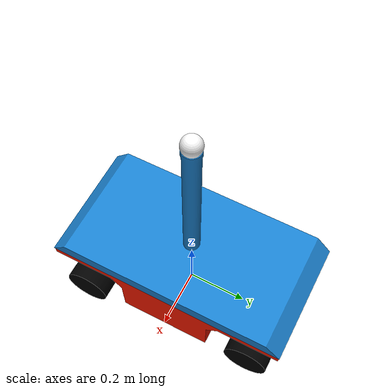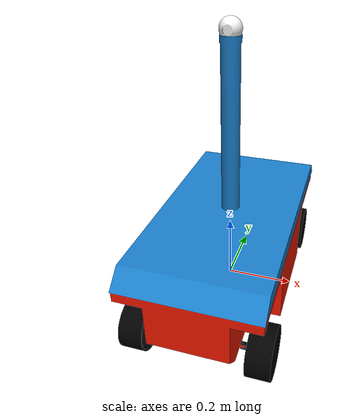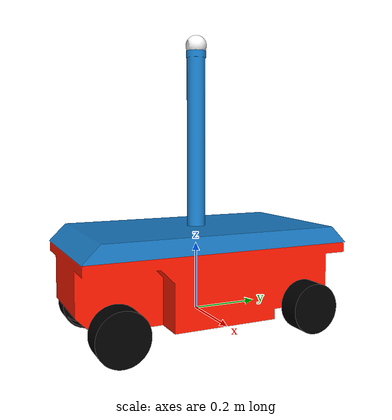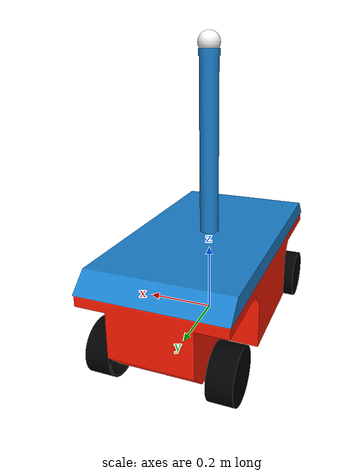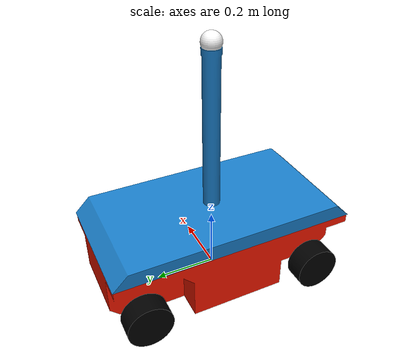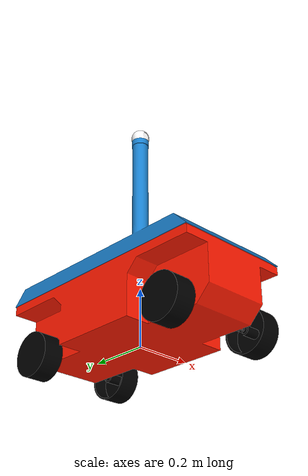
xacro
<?xml version="1.0" ?>
<robot xmlns:xacro="http://www.ros.org/wiki/xacro" name="security_robot">

  <xacro:property name="pkg_name" value="sr_bringup" />

  <xacro:include filename="$(find ${pkg_name})/descriptions/materials.xacro" />

  <link name="base_link"/>

  <link name="chassis">
    <visual name="chassis_visual">
      <origin xyz="0 0 0" rpy="0 0 0"/>
      <geometry>
        <mesh filename="file://$(find ${pkg_name})/meshes/chassis.dae"/>
      </geometry>
      <material name="orange"/>
    </visual>
    <collision name="chassis_collision">
      <origin xyz="0 0 0" rpy="0 0 0"/>
      <geometry>
        <mesh filename="file://$(find ${pkg_name})/meshes/chassis.dae"/>
      </geometry>
    </collision>
    <inertial>
      <mass value="17.653701"/>
      <inertia ixx="1.2811799" iyy="0.46841816" izz="1.5082091" ixy="-1.6060338e-09" ixz="1.6441979e-09" iyz="6.3659902e-05"/>
      <origin xyz="0 0 0" rpy="0 0 0"/>
    </inertial>
  </link>

  <link name="holder_fl">
    <visual name="holder_visual">
      <origin xyz="0 0 0" rpy="0 0 0"/>
      <geometry>
        <mesh filename="file://$(find ${pkg_name})/meshes/holder.dae"/>
      </geometry>
      <material name="black"/>
    </visual>
    <collision name="holder_collision">
      <origin xyz="0 0 0" rpy="0 0 0"/>
      <geometry>
        <mesh filename="file://$(find ${pkg_name})/meshes/holder.dae"/>
      </geometry>
    </collision>
    <inertial>
      <mass value="0.0076094748"/>
      <inertia ixx="3.113298e-07" iyy="6.5655405e-07" izz="5.1359837e-07" ixy="0" ixz="0" iyz="0"/>
      <origin xyz="0.010937363 2.2357363e-18 0.006" rpy="0 0 0"/>
    </inertial>
  </link>

  <link name="holder_fr">
    <visual name="holder_visual">
      <origin xyz="0 0 0" rpy="0 0 0"/>
      <geometry>
        <mesh filename="file://$(find ${pkg_name})/meshes/holder.dae"/>
      </geometry>
      <material name="black"/>
    </visual>
    <collision name="holder_collision">
      <origin xyz="0 0 0" rpy="0 0 0"/>
      <geometry>
        <mesh filename="file://$(find ${pkg_name})/meshes/holder.dae"/>
      </geometry>
    </collision>
    <inertial>
      <mass value="0.0076094748"/>
      <inertia ixx="3.113298e-07" iyy="6.5655405e-07" izz="5.1359837e-07" ixy="0" ixz="0" iyz="0"/>
      <origin xyz="0.010937363 -2.2357363e-18 0.006" rpy="0 0 0"/>
    </inertial>
  </link>

  <link name="wheel_bl">
    <visual name="wheel_bl_visual">
      <origin xyz="0 0 0" rpy="0 0 0"/>
      <geometry>
        <mesh filename="file://$(find ${pkg_name})/meshes/wheel.dae"/>
      </geometry>
      <material name="black"/>
    </visual>
    <collision name="wheel_bl_collision">
      <origin xyz="0 0 0" rpy="0 0 0"/>
      <geometry>
        <mesh filename="file://$(find ${pkg_name})/meshes/wheel.dae"/>
      </geometry>
    </collision>
    <inertial>
      <mass value="0.63774331"/>
      <inertia ixx="0.0012281937" iyy="0.0012281937" izz="0.0019983553" ixy="0" ixz="0" iyz="0"/>
      <origin xyz="-7.46548e-18 -5.7213009e-18 -0.04908867" rpy="0 0 0"/>
    </inertial>
  </link>

  <link name="wheel_br">
    <visual name="wheel_br_visual">
      <origin xyz="0 0 0" rpy="0 0 0"/>
      <geometry>
        <mesh filename="file://$(find ${pkg_name})/meshes/wheel.dae"/>
      </geometry>
      <material name="black"/>
    </visual>
    <collision name="wheel_br_collision">
      <origin xyz="0 0 0" rpy="0 0 0"/>
      <geometry>
        <mesh filename="file://$(find ${pkg_name})/meshes/wheel.dae"/>
      </geometry>
    </collision>
    <inertial>
      <mass value="0.63774331"/>
      <inertia ixx="0.0012281937" iyy="0.0012281937" izz="0.0019983553" ixy="0" ixz="0" iyz="0"/>
      <origin xyz="-7.46548e-18 -5.7213009e-18 -0.04908867" rpy="0 0 0"/>
    </inertial>
  </link>

  <link name="cover">
    <visual name="cover_visual">
      <origin xyz="0 0 0" rpy="0 0 0"/>
      <geometry>
        <mesh filename="file://$(find ${pkg_name})/meshes/cover.dae"/>
      </geometry>
      <material name="blue"/>
    </visual>
    <collision name="cover_collision">
      <origin xyz="0 0 0" rpy="0 0 0"/>
      <geometry>
        <mesh filename="file://$(find ${pkg_name})/meshes/cover.dae"/>
      </geometry>
    </collision>
    <inertial>
      <mass value="3.9955897"/>
      <inertia ixx="0.25951318" iyy="0.18107308" izz="0.18107308" ixy="3.6769219e-16" ixz="8.1482622e-17" iyz="0.02623055"/>
      <origin xyz="7.7826263e-16 0.34015614 -0.19047725" rpy="0 0 0"/>
    </inertial>
  </link>

  <link name="wheel_fl">
    <visual name="wheel_fl_visual">
      <origin xyz="0 0 0" rpy="0 0 0"/>
      <geometry>
        <mesh filename="file://$(find ${pkg_name})/meshes/wheel.dae"/>
      </geometry>
      <material name="black"/>
    </visual>
    <collision name="wheel_fl_collision">
      <origin xyz="0 0 0" rpy="0 0 0"/>
      <geometry>
        <mesh filename="file://$(find ${pkg_name})/meshes/wheel.dae"/>
      </geometry>
    </collision>
    <inertial>
      <mass value="0.63774331"/>
      <inertia ixx="0.0012281937" iyy="0.0012281937" izz="0.0019983553" ixy="0" ixz="0" iyz="0"/>
      <origin xyz="-7.46548e-18 5.7213009e-18 0.04908867" rpy="0 0 0"/>
    </inertial>
  </link>

  <link name="wheel_fr">
    <visual name="wheel_fr_visual">
      <origin xyz="0 0 0" rpy="0 0 0"/>
      <geometry>
        <mesh filename="file://$(find ${pkg_name})/meshes/wheel.dae"/>
      </geometry>
      <material name="black"/>
    </visual>
    <collision name="wheel_fr_collision">
      <origin xyz="0 0 0" rpy="0 0 0"/>
      <geometry>
        <mesh filename="file://$(find ${pkg_name})/meshes/wheel.dae"/>
      </geometry>
    </collision>
    <inertial>
      <mass value="0.63774331"/>
      <inertia ixx="0.0012281937" iyy="0.0012281937" izz="0.0019983553" ixy="0" ixz="0" iyz="0"/>
      <origin xyz="-5.7213009e-18 -7.46548e-18 0.04908867" rpy="0 0 0"/>
    </inertial>
  </link>

  <link name="camera">
    <visual name="camera_visual">
      <origin xyz="0 0 0" rpy="0 0 0"/>
      <geometry>
        <mesh filename="file://$(find ${pkg_name})/meshes/camera.dae"/>
      </geometry>
      <material name="white"/>
    </visual>
    <collision name="camera_collision">
      <origin xyz="0 0 0" rpy="0 0 0"/>
      <geometry>
        <mesh filename="file://$(find ${pkg_name})/meshes/camera.dae"/>
      </geometry>
    </collision>
    <inertial>
      <mass value="0.13100263"/>
      <inertia ixx="4.2674674e-05" iyy="4.4839771e-05" izz="5.3503265e-05" ixy="-9.505969e-13" ixz="4.5841307e-13" iyz="3.4181462e-07"/>
      <origin xyz="-4.7717363e-10 0.00060875978 0.01928599" rpy="0 0 0"/>
    </inertial>
  </link>

  <joint name="base_chassis" type="fixed">
    <parent link="base_link"/>
    <child link="chassis"/>
    <origin xyz="0.0 0.0 0.0" rpy="0.0 0.0 0.0"/>
  </joint>

  <joint name="dof_holder_fl" type="revolute">
    <origin xyz="0.1355 -0.30003964 0.01" rpy="3.1415927 0 0"/>
    <parent link="chassis"/>
    <child link="holder_fl"/>
    <axis xyz="0 0 -1"/>
    <limit effort="1" velocity="1" lower="-0.3" upper="0.3"/>
  </joint>

  <joint name="dof_holder_fr" type="revolute">
    <origin xyz="-0.1355 -0.30003964 0.01" rpy="3.1415927 0 3.1415927"/>
    <parent link="chassis"/>
    <child link="holder_fr"/>
    <axis xyz="0 0 -1"/>
    <limit effort="1" velocity="1" lower="-0.3" upper="0.3"/>
  </joint>

  <joint name="dof_wheel_bl" type="continuous">
    <origin xyz="0.13 0.29996036 0.01" rpy="0 0 0"/>
    <parent link="chassis"/>
    <child link="wheel_bl"/>
    <axis xyz="1 0 0"/>
  </joint>

  <joint name="dof_wheel_br" type="continuous">
    <origin xyz="-0.13 0.29996036 0.01" rpy="0 0 3.1415927"/>
    <parent link="chassis"/>
    <child link="wheel_br"/>
    <axis xyz="-1 0 0 "/>
  </joint>

  <joint name="chassis_cover" type="fixed">
    <origin xyz="0 0 0.255" rpy="0 0 0"/>
    <parent link="chassis"/>
    <child link="cover"/>
  </joint>

  <joint name="dof_wheel_holder_fl" type="continuous">
    <origin xyz="0.01 0 0" rpy="0 0 0"/>
    <parent link="holder_fl"/>
    <child link="wheel_fl"/>
    <axis xyz="1 0 0"/>
  </joint>

  <joint name="dof_wheel_holder_fr" type="continuous">
    <origin xyz="0.01 0 0" rpy="0 0 0"/>
    <parent link="holder_fr"/>
    <child link="wheel_fr"/>
    <axis xyz="-1 0 0 "/>
  </joint>

  <joint name="Fastened_3" type="fixed">
    <origin xyz="0 0 0.52" rpy="0 0 0"/>
    <parent link="cover"/>
    <child link="camera"/>
  </joint>

  <xacro:include filename="$(find ${pkg_name})/descriptions/gz_plugins.gazebo" />

</robot>

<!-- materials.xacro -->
<robot xmlns:xacro="http://www.ros.org/wiki/xacro">

      <!-- Orange material -->
  <material name="orange">
    <color rgba="1.0 0.1 0.0 1.0"/>
  </material>

  <!-- Blue material -->
  <material name="blue">
    <color rgba="0.1 0.5 0.8 1.0"/>
  </material>

  <!-- Black material -->
  <material name="black">
    <color rgba="0.0 0.0 0.0 1.0"/>
  </material>

    <!-- White material -->
  <material name="white">
    <color rgba="1 1 1 1.0"/>
  </material>

</robot>
